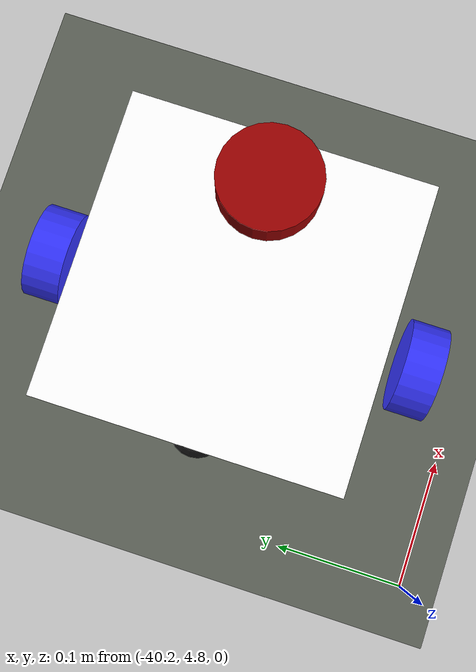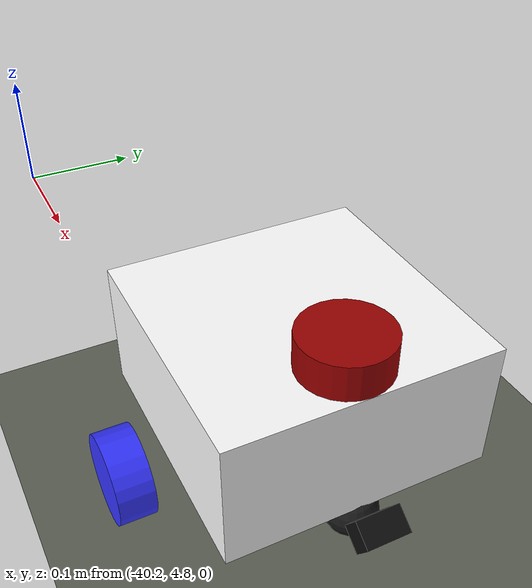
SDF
<sdf version="1.6">
 <world name="w1_house_site">
  <physics name="4ms" type="ignored">
   <max_step_size>0.004</max_step_size>
   <real_time_factor>1.0</real_time_factor>
  </physics>
  <plugin filename="ignition-gazebo-physics-system" name="gz::sim::systems::Physics"/>
  <plugin filename="ignition-gazebo-scene-broadcaster-system" name="gz::sim::systems::SceneBroadcaster"/>
  <plugin filename="ignition-gazebo-user-commands-system" name="gz::sim::systems::UserCommands"/>
  <plugin filename="ignition-gazebo-sensors-system" name="gz::sim::systems::Sensors">
   <render_engine>ogre2</render_engine>
  </plugin>
  <light type="directional" name="sun">
   <pose>0 0 500 0 0 0</pose>
   <diffuse>0.85 0.85 0.8 1</diffuse>
   <specular>0.2 0.2 0.2 1</specular>
   <direction>-0.4 0.2 -0.9</direction>
  </light>
  <model name="ground_plane">
   <static>true</static>
   <pose>0 0 -0.3 0 0 0</pose>
   <link name="link">
    <collision name="collision">
     <geometry><plane><normal>0 0 1</normal><size>400.0 400.0</size></plane></geometry>
    </collision>
    <visual name="visual">
     <geometry><plane><normal>0 0 1</normal><size>400.0 400.0</size></plane></geometry>
     <material>
      <ambient>0.35 0.37 0.33 1</ambient>
      <diffuse>0.35 0.37 0.33 1</diffuse>
      <specular>0.05 0.05 0.05 1</specular>
     </material>
    </visual>
   </link>
  </model>
  <include>
   <name>nav_ugv</name>
   <uri>model://nav_ugv</uri>
   <pose>-40.000 5.000 -0.300 0 0 0.0000</pose>
   <plugin filename="ignition-gazebo-diff-drive-system" name="gz::sim::systems::DiffDrive">
    <left_joint>left_wheel_joint</left_joint>
    <left_joint>rear_left_wheel_joint</left_joint>
    <right_joint>right_wheel_joint</right_joint>
    <right_joint>rear_right_wheel_joint</right_joint>
    <wheel_separation>0.49</wheel_separation>
    <wheel_radius>0.098</wheel_radius>
    <topic>cmd_vel</topic>
    <odom_topic>odometry</odom_topic>
    <frame_id>nav_ugv/wheel_odom</frame_id>
    <child_frame_id>nav_ugv/wheel_odom_base</child_frame_id>
    <odom_publish_frequency>30</odom_publish_frequency>
   </plugin>
   <plugin filename="ignition-gazebo-odometry-publisher-system" name="gz::sim::systems::OdometryPublisher">
    <dimensions>2</dimensions>
    <odom_frame>nav_ugv/odom</odom_frame>
    <robot_base_frame>nav_ugv/base_link</robot_base_frame>
    <odom_publish_frequency>30</odom_publish_frequency>
   </plugin>
  </include>
  <model name="overhead_overview_camera">
   <static>true</static>
   <pose>0.00 0.00 150.0 0 1.5707963 1.5707963</pose>
   <link name="link">
    <sensor name="room_overview_camera" type="camera">
     <always_on>true</always_on>
     <update_rate>10.0</update_rate>
     <topic>/room_overhead/image</topic>
     <camera>
      <horizontal_fov>0.7725</horizontal_fov>
      <image><width>2000</width><height>2000</height></image>
      <clip><near>0.5</near><far>400</far></clip>
     </camera>
    </sensor>
   </link>
  </model>
 </world>
</sdf>

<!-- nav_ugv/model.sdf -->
<sdf version="1.6">
  <model name="nav_ugv">
    <link name="base_link">
      <!-- Chassis center sits at wheel_radius + chassis_z/2 = 0.05 + 0.075
           = 0.125m above the ground - just tall enough that the box's
           bottom face clears the wheels' contact patch. -->
      <pose>0 0 0.125 0 0 0</pose>
      <inertial>
        <mass>1.5</mass>
        <inertia>
          <ixx>0.0138</ixx>
          <ixy>0</ixy>
          <ixz>0</ixz>
          <iyy>0.0138</iyy>
          <iyz>0</iyz>
          <izz>0.0225</izz>
        </inertia>
      </inertial>
      <visual name="chassis_visual">
        <geometry>
          <box>
            <size>0.3 0.3 0.15</size>
          </box>
        </geometry>
        <material>
          <ambient>1 1 1 1</ambient>
          <diffuse>1 1 1 1</diffuse>
          <specular>0.3 0.3 0.3 1</specular>
        </material>
      </visual>
      <collision name="chassis_collision">
        <geometry>
          <box>
            <size>0.3 0.3 0.15</size>
          </box>
        </geometry>
      </collision>

      <visual name="lidar_visual">
        <pose>0.1 0 0.095 0 0 0</pose>
        <geometry>
          <cylinder>
            <radius>0.05</radius>
            <length>0.04</length>
          </cylinder>
        </geometry>
        <material>
          <ambient>0.6 0 0 1</ambient>
          <diffuse>0.6 0 0 1</diffuse>
        </material>
      </visual>
      <sensor name="lidar" type="gpu_lidar">
        <pose>0.1 0 0.095 0 0 0</pose>
        <topic>nav_ugv/scan</topic>
        <update_rate>10</update_rate>
        <always_on>true</always_on>
        <visualize>false</visualize>
        <lidar>
          <scan>
            <horizontal>
              <samples>360</samples>
              <resolution>1</resolution>
              <min_angle>-3.14159</min_angle>
              <max_angle>3.14159</max_angle>
            </horizontal>
            <vertical>
              <samples>1</samples>
              <resolution>1</resolution>
              <min_angle>0</min_angle>
              <max_angle>0</max_angle>
            </vertical>
          </scan>
          <range>
            <min>0.3</min>
            <max>12.0</max>
            <resolution>0.01</resolution>
          </range>
        </lidar>
      </sensor>
    </link>

    <link name="left_wheel">
      <pose>0 0.2 0.05 -1.5708 0 0</pose>
      <inertial>
        <mass>0.2</mass>
        <inertia>
          <ixx>0.00013</ixx>
          <ixy>0</ixy>
          <ixz>0</ixz>
          <iyy>0.00013</iyy>
          <iyz>0</iyz>
          <izz>0.00025</izz>
        </inertia>
      </inertial>
      <visual name="visual">
        <geometry>
          <cylinder>
            <radius>0.05</radius>
            <length>0.04</length>
          </cylinder>
        </geometry>
        <material>
          <ambient>0.2 0.2 1 1</ambient>
          <diffuse>0.2 0.2 1 1</diffuse>
        </material>
      </visual>
      <collision name="collision">
        <geometry>
          <sphere>
            <radius>0.05</radius>
          </sphere>
        </geometry>
      </collision>
    </link>

    <link name="right_wheel">
      <pose>0 -0.2 0.05 -1.5708 0 0</pose>
      <inertial>
        <mass>0.2</mass>
        <inertia>
          <ixx>0.00013</ixx>
          <ixy>0</ixy>
          <ixz>0</ixz>
          <iyy>0.00013</iyy>
          <iyz>0</iyz>
          <izz>0.00025</izz>
        </inertia>
      </inertial>
      <visual name="visual">
        <geometry>
          <cylinder>
            <radius>0.05</radius>
            <length>0.04</length>
          </cylinder>
        </geometry>
        <material>
          <ambient>0.2 0.2 1 1</ambient>
          <diffuse>0.2 0.2 1 1</diffuse>
        </material>
      </visual>
      <collision name="collision">
        <geometry>
          <sphere>
            <radius>0.05</radius>
          </sphere>
        </geometry>
      </collision>
    </link>

    <link name="caster_wheel">
      <pose>-0.13 0 0.03 0 0 0</pose>
      <inertial>
        <mass>0.1</mass>
        <inertia>
          <ixx>0.000036</ixx>
          <ixy>0</ixy>
          <ixz>0</ixz>
          <iyy>0.000036</iyy>
          <iyz>0</iyz>
          <izz>0.000036</izz>
        </inertia>
      </inertial>
      <visual name="visual">
        <geometry>
          <sphere>
            <radius>0.03</radius>
          </sphere>
        </geometry>
        <material>
          <ambient>0.1 0.1 0.1 1</ambient>
          <diffuse>0.1 0.1 0.1 1</diffuse>
        </material>
      </visual>
      <collision name="collision">
        <geometry>
          <sphere>
            <radius>0.03</radius>
          </sphere>
        </geometry>
        <surface>
          <friction>
            <ode>
              <mu>0.001</mu>
              <mu2>0.001</mu2>
            </ode>
          </friction>
        </surface>
      </collision>
    </link>

    <link name="front_caster_wheel">
      <pose>0.13 0 0.03 0 0 0</pose>
      <inertial>
        <mass>0.1</mass>
        <inertia>
          <ixx>0.000036</ixx>
          <ixy>0</ixy>
          <ixz>0</ixz>
          <iyy>0.000036</iyy>
          <iyz>0</iyz>
          <izz>0.000036</izz>
        </inertia>
      </inertial>
      <visual name="visual">
        <geometry>
          <sphere>
            <radius>0.03</radius>
          </sphere>
        </geometry>
        <material>
          <ambient>0.1 0.1 0.1 1</ambient>
          <diffuse>0.1 0.1 0.1 1</diffuse>
        </material>
      </visual>
      <collision name="collision">
        <geometry>
          <sphere>
            <radius>0.03</radius>
          </sphere>
        </geometry>
        <surface>
          <friction>
            <ode>
              <mu>0.001</mu>
              <mu2>0.001</mu2>
            </ode>
          </friction>
        </surface>
      </collision>
    </link>

    <joint name="left_wheel_joint" type="revolute">
      <parent>base_link</parent>
      <child>left_wheel</child>
      <axis>
        <xyz>0 0 1</xyz>
        <limit>
          <lower>-1.79769e+308</lower>
          <upper>1.79769e+308</upper>
        </limit>
      </axis>
    </joint>

    <joint name="right_wheel_joint" type="revolute">
      <parent>base_link</parent>
      <child>right_wheel</child>
      <axis>
        <xyz>0 0 1</xyz>
        <limit>
          <lower>-1.79769e+308</lower>
          <upper>1.79769e+308</upper>
        </limit>
      </axis>
    </joint>

    <joint name="front_caster_wheel_joint" type="ball">
      <parent>base_link</parent>
      <child>front_caster_wheel</child>
    </joint>

    <joint name="caster_wheel_joint" type="ball">
      <parent>base_link</parent>
      <child>caster_wheel</child>
    </joint>

    <link name="front_camera_link">
      <pose>0.18 0 0.05 0 0.6 0</pose>
      <visual name="front_camera_visual">
        <geometry>
          <box>
            <size>0.03 0.05 0.03</size>
          </box>
        </geometry>
        <material>
          <ambient>0.05 0.05 0.05 1</ambient>
          <diffuse>0.05 0.05 0.05 1</diffuse>
        </material>
      </visual>
      <sensor name="front_camera" type="rgbd_camera">
        <pose>0 0 0 0 0 0</pose>
        <always_on>true</always_on>
        <update_rate>10</update_rate>
        <visualize>true</visualize>
        <topic>nav_ugv/front_camera</topic>
        <camera>
          <horizontal_fov>1.047</horizontal_fov>
          <image>
            <width>320</width>
            <height>240</height>
          </image>
          <clip>
            <near>0.1</near>
            <far>8.0</far>
          </clip>
        </camera>
      </sensor>
    </link>
    <joint name="front_camera_joint" type="fixed">
      <parent>base_link</parent>
      <child>front_camera_link</child>
    </joint>

    <link name="video_camera_link">
      <pose>0.1 0 0.22 0 0.15 0</pose>
      <inertial>
        <mass>0.02</mass>
        <inertia>
          <ixx>0.000005</ixx>
          <iyy>0.000005</iyy>
          <izz>0.000005</izz>
          <ixy>0</ixy>
          <ixz>0</ixz>
          <iyz>0</iyz>
        </inertia>
      </inertial>
      <visual name="video_camera_visual">
        <geometry>
          <box>
            <size>0.03 0.05 0.03</size>
          </box>
        </geometry>
        <material>
          <ambient>0.05 0.05 0.05 1</ambient>
          <diffuse>0.05 0.05 0.05 1</diffuse>
        </material>
      </visual>
      <sensor name="video_camera" type="camera">
        <pose>0 0 0 0 0 0</pose>
        <always_on>true</always_on>
        <update_rate>10</update_rate>
        <visualize>true</visualize>
        <topic>nav_ugv/video_camera</topic>
        <camera>
          <horizontal_fov>1.3</horizontal_fov>
          <image>
            <width>320</width>
            <height>240</height>
          </image>
          <clip>
            <near>0.1</near>
            <far>15.0</far>
          </clip>
        </camera>
      </sensor>
    </link>
    <joint name="video_camera_joint" type="fixed">
      <parent>base_link</parent>
      <child>video_camera_link</child>
    </joint>
  </model>
</sdf>
